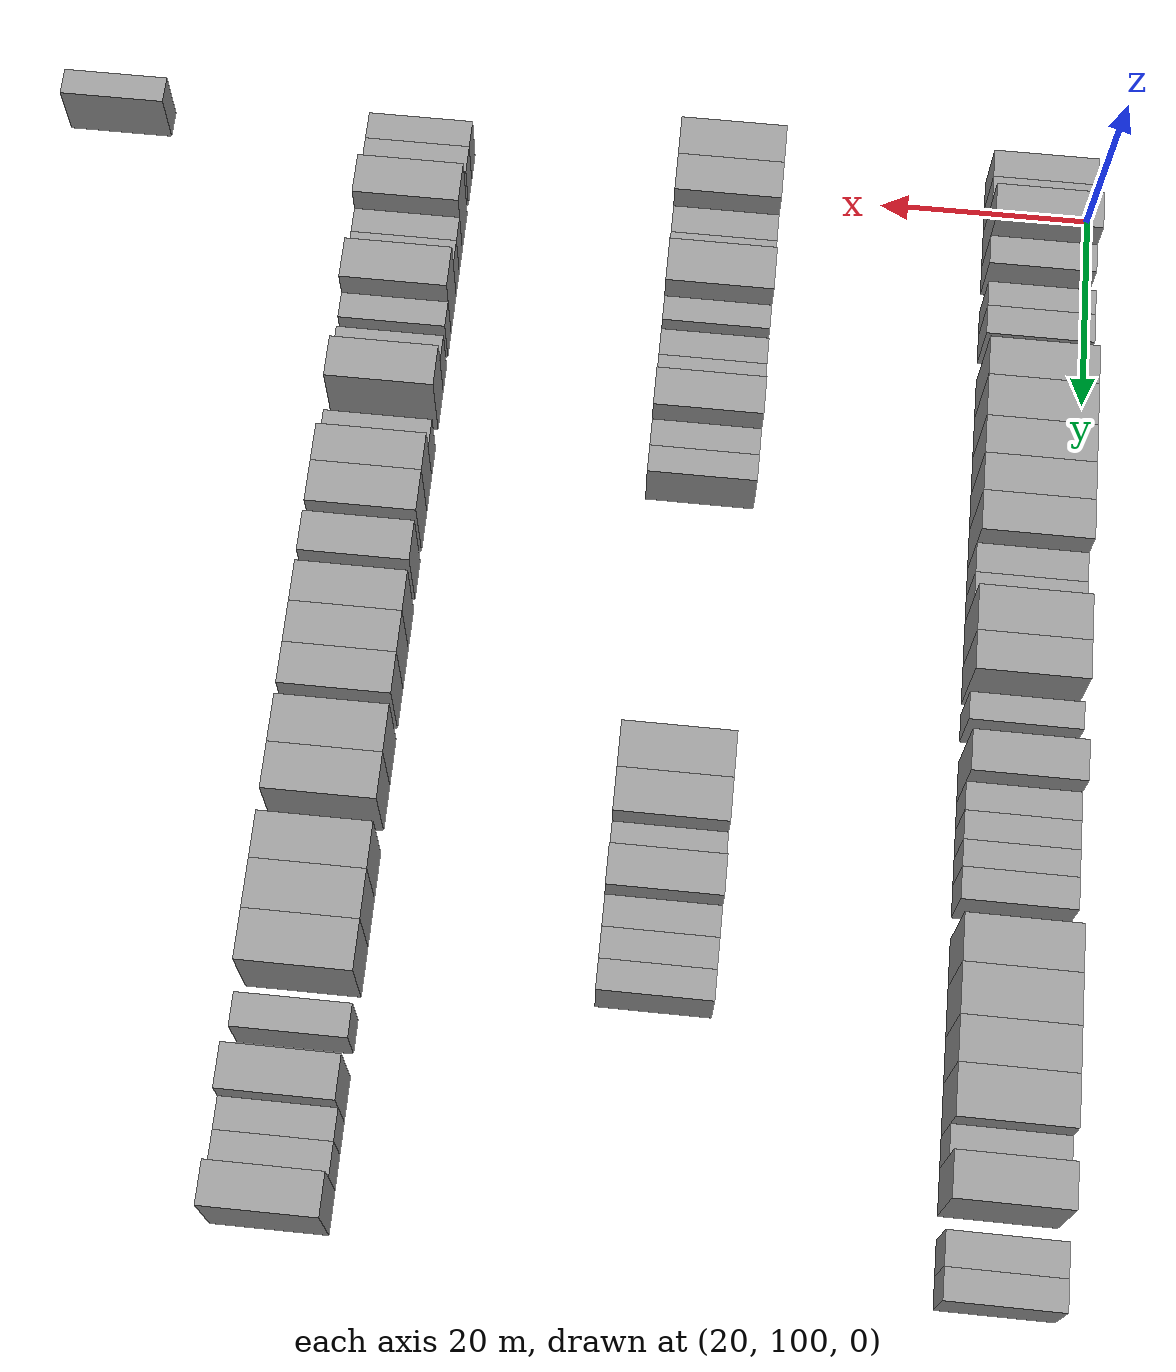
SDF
<sdf version="1.6">
 <world name="default">
  <model name="building_140">
   <static>1</static>
   <pose>25.0000 98.0081 0 0.000000 0.000000 0.000000</pose>
   <link name="link">
    <pose>0 0 3.00 0 0 0</pose>
    <collision name="collision"><geometry><box><size>10.0000 2.9160 6.0000</size></box></geometry></collision>
    <visual name="visual">
     <cast_shadows>0</cast_shadows>
     <geometry><box><size>10.0000 2.9160 6.0000</size></box></geometry>
     <material>
      <script>
       <uri>model://grey_wall/materials/scripts</uri>
       <uri>model://grey_wall/materials/textures</uri>
       <name>vrc/grey_wall</name>
      </script>
     </material>
    </visual>
   </link>
  </model>
  <model name="building_141">
   <static>1</static>
   <pose>25.0000 100.8148 0 0.000000 0.000000 0.000000</pose>
   <link name="link">
    <pose>0 0 3.00 0 0 0</pose>
    <collision name="collision"><geometry><box><size>10.0000 2.6975 6.0000</size></box></geometry></collision>
    <visual name="visual">
     <cast_shadows>0</cast_shadows>
     <geometry><box><size>10.0000 2.6975 6.0000</size></box></geometry>
     <material>
      <script>
       <uri>model://grey_wall/materials/scripts</uri>
       <uri>model://grey_wall/materials/textures</uri>
       <name>vrc/grey_wall</name>
      </script>
     </material>
    </visual>
   </link>
  </model>
  <model name="building_142">
   <static>1</static>
   <pose>25.0000 104.0784 0 0.000000 0.000000 0.000000</pose>
   <link name="link">
    <pose>0 0 4.50 0 0 0</pose>
    <collision name="collision"><geometry><box><size>10.0000 3.8297 9.0000</size></box></geometry></collision>
    <visual name="visual">
     <cast_shadows>0</cast_shadows>
     <geometry><box><size>10.0000 3.8297 9.0000</size></box></geometry>
     <material>
      <script>
       <uri>model://grey_wall/materials/scripts</uri>
       <uri>model://grey_wall/materials/textures</uri>
       <name>vrc/grey_wall</name>
      </script>
     </material>
    </visual>
   </link>
  </model>
  <model name="building_143">
   <static>1</static>
   <pose>25.0000 107.4707 0 0.000000 0.000000 0.000000</pose>
   <link name="link">
    <pose>0 0 3.00 0 0 0</pose>
    <collision name="collision"><geometry><box><size>10.0000 2.9550 6.0000</size></box></geometry></collision>
    <visual name="visual">
     <cast_shadows>0</cast_shadows>
     <geometry><box><size>10.0000 2.9550 6.0000</size></box></geometry>
     <material>
      <script>
       <uri>model://grey_wall/materials/scripts</uri>
       <uri>model://grey_wall/materials/textures</uri>
       <name>vrc/grey_wall</name>
      </script>
     </material>
    </visual>
   </link>
  </model>
  <model name="building_144">
   <static>1</static>
   <pose>25.0000 112.2206 0 0.000000 0.000000 0.000000</pose>
   <link name="link">
    <pose>0 0 3.00 0 0 0</pose>
    <collision name="collision"><geometry><box><size>10.0000 2.5448 6.0000</size></box></geometry></collision>
    <visual name="visual">
     <cast_shadows>0</cast_shadows>
     <geometry><box><size>10.0000 2.5448 6.0000</size></box></geometry>
     <material>
      <script>
       <uri>model://grey_wall/materials/scripts</uri>
       <uri>model://grey_wall/materials/textures</uri>
       <name>vrc/grey_wall</name>
      </script>
     </material>
    </visual>
   </link>
  </model>
  <model name="building_145">
   <static>1</static>
   <pose>25.0000 114.9694 0 0.000000 0.000000 0.000000</pose>
   <link name="link">
    <pose>0 0 3.00 0 0 0</pose>
    <collision name="collision"><geometry><box><size>10.0000 2.9528 6.0000</size></box></geometry></collision>
    <visual name="visual">
     <cast_shadows>0</cast_shadows>
     <geometry><box><size>10.0000 2.9528 6.0000</size></box></geometry>
     <material>
      <script>
       <uri>model://grey_wall/materials/scripts</uri>
       <uri>model://grey_wall/materials/textures</uri>
       <name>vrc/grey_wall</name>
      </script>
     </material>
    </visual>
   </link>
  </model>
  <model name="building_146">
   <static>1</static>
   <pose>25.0000 120.3851 0 0.000000 0.000000 0.000000</pose>
   <link name="link">
    <pose>0 0 4.50 0 0 0</pose>
    <collision name="collision"><geometry><box><size>10.0000 3.8787 9.0000</size></box></geometry></collision>
    <visual name="visual">
     <cast_shadows>0</cast_shadows>
     <geometry><box><size>10.0000 3.8787 9.0000</size></box></geometry>
     <material>
      <script>
       <uri>model://grey_wall/materials/scripts</uri>
       <uri>model://grey_wall/materials/textures</uri>
       <name>vrc/grey_wall</name>
      </script>
     </material>
    </visual>
   </link>
  </model>
  <model name="building_147">
   <static>1</static>
   <pose>25.0000 124.4127 0 0.000000 0.000000 0.000000</pose>
   <link name="link">
    <pose>0 0 4.50 0 0 0</pose>
    <collision name="collision"><geometry><box><size>10.0000 4.1764 9.0000</size></box></geometry></collision>
    <visual name="visual">
     <cast_shadows>0</cast_shadows>
     <geometry><box><size>10.0000 4.1764 9.0000</size></box></geometry>
     <material>
      <script>
       <uri>model://grey_wall/materials/scripts</uri>
       <uri>model://grey_wall/materials/textures</uri>
       <name>vrc/grey_wall</name>
      </script>
     </material>
    </visual>
   </link>
  </model>
  <model name="building_148">
   <static>1</static>
   <pose>25.0000 128.3811 0 0.000000 0.000000 0.000000</pose>
   <link name="link">
    <pose>0 0 4.50 0 0 0</pose>
    <collision name="collision"><geometry><box><size>10.0000 3.7604 9.0000</size></box></geometry></collision>
    <visual name="visual">
     <cast_shadows>0</cast_shadows>
     <geometry><box><size>10.0000 3.7604 9.0000</size></box></geometry>
     <material>
      <script>
       <uri>model://grey_wall/materials/scripts</uri>
       <uri>model://grey_wall/materials/textures</uri>
       <name>vrc/grey_wall</name>
      </script>
     </material>
    </visual>
   </link>
  </model>
  <model name="building_149">
   <static>1</static>
   <pose>25.0000 132.1184 0 0.000000 0.000000 0.000000</pose>
   <link name="link">
    <pose>0 0 4.50 0 0 0</pose>
    <collision name="collision"><geometry><box><size>10.0000 3.7141 9.0000</size></box></geometry></collision>
    <visual name="visual">
     <cast_shadows>0</cast_shadows>
     <geometry><box><size>10.0000 3.7141 9.0000</size></box></geometry>
     <material>
      <script>
       <uri>model://grey_wall/materials/scripts</uri>
       <uri>model://grey_wall/materials/textures</uri>
       <name>vrc/grey_wall</name>
      </script>
     </material>
    </visual>
   </link>
  </model>
  <model name="building_150">
   <static>1</static>
   <pose>25.0000 135.9030 0 0.000000 0.000000 0.000000</pose>
   <link name="link">
    <pose>0 0 4.50 0 0 0</pose>
    <collision name="collision"><geometry><box><size>10.0000 3.8553 9.0000</size></box></geometry></collision>
    <visual name="visual">
     <cast_shadows>0</cast_shadows>
     <geometry><box><size>10.0000 3.8553 9.0000</size></box></geometry>
     <material>
      <script>
       <uri>model://grey_wall/materials/scripts</uri>
       <uri>model://grey_wall/materials/textures</uri>
       <name>vrc/grey_wall</name>
      </script>
     </material>
    </visual>
   </link>
  </model>
  <model name="building_151">
   <static>1</static>
   <pose>25.0000 139.2548 0 0.000000 0.000000 0.000000</pose>
   <link name="link">
    <pose>0 0 3.00 0 0 0</pose>
    <collision name="collision"><geometry><box><size>10.0000 2.8482 6.0000</size></box></geometry></collision>
    <visual name="visual">
     <cast_shadows>0</cast_shadows>
     <geometry><box><size>10.0000 2.8482 6.0000</size></box></geometry>
     <material>
      <script>
       <uri>model://grey_wall/materials/scripts</uri>
       <uri>model://grey_wall/materials/textures</uri>
       <name>vrc/grey_wall</name>
      </script>
     </material>
    </visual>
   </link>
  </model>
  <model name="building_152">
   <static>1</static>
   <pose>25.0000 141.9115 0 0.000000 0.000000 0.000000</pose>
   <link name="link">
    <pose>0 0 3.00 0 0 0</pose>
    <collision name="collision"><geometry><box><size>10.0000 2.4652 6.0000</size></box></geometry></collision>
    <visual name="visual">
     <cast_shadows>0</cast_shadows>
     <geometry><box><size>10.0000 2.4652 6.0000</size></box></geometry>
     <material>
      <script>
       <uri>model://grey_wall/materials/scripts</uri>
       <uri>model://grey_wall/materials/textures</uri>
       <name>vrc/grey_wall</name>
      </script>
     </material>
    </visual>
   </link>
  </model>
  <model name="building_153">
   <static>1</static>
   <pose>25.0000 145.3161 0 0.000000 0.000000 0.000000</pose>
   <link name="link">
    <pose>0 0 4.50 0 0 0</pose>
    <collision name="collision"><geometry><box><size>10.0000 4.3440 9.0000</size></box></geometry></collision>
    <visual name="visual">
     <cast_shadows>0</cast_shadows>
     <geometry><box><size>10.0000 4.3440 9.0000</size></box></geometry>
     <material>
      <script>
       <uri>model://grey_wall/materials/scripts</uri>
       <uri>model://grey_wall/materials/textures</uri>
       <name>vrc/grey_wall</name>
      </script>
     </material>
    </visual>
   </link>
  </model>
  <model name="building_154">
   <static>1</static>
   <pose>25.0000 149.3092 0 0.000000 0.000000 0.000000</pose>
   <link name="link">
    <pose>0 0 4.50 0 0 0</pose>
    <collision name="collision"><geometry><box><size>10.0000 3.6423 9.0000</size></box></geometry></collision>
    <visual name="visual">
     <cast_shadows>0</cast_shadows>
     <geometry><box><size>10.0000 3.6423 9.0000</size></box></geometry>
     <material>
      <script>
       <uri>model://grey_wall/materials/scripts</uri>
       <uri>model://grey_wall/materials/textures</uri>
       <name>vrc/grey_wall</name>
      </script>
     </material>
    </visual>
   </link>
  </model>
  <model name="building_155">
   <static>1</static>
   <pose>25.0000 153.4134 0 0.000000 0.000000 0.000000</pose>
   <link name="link">
    <pose>0 0 3.00 0 0 0</pose>
    <collision name="collision"><geometry><box><size>10.0000 2.5661 6.0000</size></box></geometry></collision>
    <visual name="visual">
     <cast_shadows>0</cast_shadows>
     <geometry><box><size>10.0000 2.5661 6.0000</size></box></geometry>
     <material>
      <script>
       <uri>model://grey_wall/materials/scripts</uri>
       <uri>model://grey_wall/materials/textures</uri>
       <name>vrc/grey_wall</name>
      </script>
     </material>
    </visual>
   </link>
  </model>
  <model name="building_156">
   <static>1</static>
   <pose>25.0000 158.5717 0 0.000000 0.000000 0.000000</pose>
   <link name="link">
    <pose>0 0 4.50 0 0 0</pose>
    <collision name="collision"><geometry><box><size>10.0000 3.7504 9.0000</size></box></geometry></collision>
    <visual name="visual">
     <cast_shadows>0</cast_shadows>
     <geometry><box><size>10.0000 3.7504 9.0000</size></box></geometry>
     <material>
      <script>
       <uri>model://grey_wall/materials/scripts</uri>
       <uri>model://grey_wall/materials/textures</uri>
       <name>vrc/grey_wall</name>
      </script>
     </material>
    </visual>
   </link>
  </model>
  <model name="building_157">
   <static>1</static>
   <pose>25.0000 161.7484 0 0.000000 0.000000 0.000000</pose>
   <link name="link">
    <pose>0 0 3.00 0 0 0</pose>
    <collision name="collision"><geometry><box><size>10.0000 2.6029 6.0000</size></box></geometry></collision>
    <visual name="visual">
     <cast_shadows>0</cast_shadows>
     <geometry><box><size>10.0000 2.6029 6.0000</size></box></geometry>
     <material>
      <script>
       <uri>model://grey_wall/materials/scripts</uri>
       <uri>model://grey_wall/materials/textures</uri>
       <name>vrc/grey_wall</name>
      </script>
     </material>
    </visual>
   </link>
  </model>
  <model name="building_158">
   <static>1</static>
   <pose>25.0000 164.3542 0 0.000000 0.000000 0.000000</pose>
   <link name="link">
    <pose>0 0 3.00 0 0 0</pose>
    <collision name="collision"><geometry><box><size>10.0000 2.6088 6.0000</size></box></geometry></collision>
    <visual name="visual">
     <cast_shadows>0</cast_shadows>
     <geometry><box><size>10.0000 2.6088 6.0000</size></box></geometry>
     <material>
      <script>
       <uri>model://grey_wall/materials/scripts</uri>
       <uri>model://grey_wall/materials/textures</uri>
       <name>vrc/grey_wall</name>
      </script>
     </material>
    </visual>
   </link>
  </model>
  <model name="building_159">
   <static>1</static>
   <pose>25.0000 166.8739 0 0.000000 0.000000 0.000000</pose>
   <link name="link">
    <pose>0 0 3.00 0 0 0</pose>
    <collision name="collision"><geometry><box><size>10.0000 2.4306 6.0000</size></box></geometry></collision>
    <visual name="visual">
     <cast_shadows>0</cast_shadows>
     <geometry><box><size>10.0000 2.4306 6.0000</size></box></geometry>
     <material>
      <script>
       <uri>model://grey_wall/materials/scripts</uri>
       <uri>model://grey_wall/materials/textures</uri>
       <name>vrc/grey_wall</name>
      </script>
     </material>
    </visual>
   </link>
  </model>
  <model name="building_160">
   <static>1</static>
   <pose>25.0000 169.5334 0 0.000000 0.000000 0.000000</pose>
   <link name="link">
    <pose>0 0 3.00 0 0 0</pose>
    <collision name="collision"><geometry><box><size>10.0000 2.8885 6.0000</size></box></geometry></collision>
    <visual name="visual">
     <cast_shadows>0</cast_shadows>
     <geometry><box><size>10.0000 2.8885 6.0000</size></box></geometry>
     <material>
      <script>
       <uri>model://grey_wall/materials/scripts</uri>
       <uri>model://grey_wall/materials/textures</uri>
       <name>vrc/grey_wall</name>
      </script>
     </material>
    </visual>
   </link>
  </model>
  <model name="building_161">
   <static>1</static>
   <pose>25.0000 175.0830 0 0.000000 0.000000 0.000000</pose>
   <link name="link">
    <pose>0 0 4.50 0 0 0</pose>
    <collision name="collision"><geometry><box><size>10.0000 4.2106 9.0000</size></box></geometry></collision>
    <visual name="visual">
     <cast_shadows>0</cast_shadows>
     <geometry><box><size>10.0000 4.2106 9.0000</size></box></geometry>
     <material>
      <script>
       <uri>model://grey_wall/materials/scripts</uri>
       <uri>model://grey_wall/materials/textures</uri>
       <name>vrc/grey_wall</name>
      </script>
     </material>
    </visual>
   </link>
  </model>
  <model name="building_162">
   <static>1</static>
   <pose>25.0000 179.4104 0 0.000000 0.000000 0.000000</pose>
   <link name="link">
    <pose>0 0 4.50 0 0 0</pose>
    <collision name="collision"><geometry><box><size>10.0000 4.4443 9.0000</size></box></geometry></collision>
    <visual name="visual">
     <cast_shadows>0</cast_shadows>
     <geometry><box><size>10.0000 4.4443 9.0000</size></box></geometry>
     <material>
      <script>
       <uri>model://grey_wall/materials/scripts</uri>
       <uri>model://grey_wall/materials/textures</uri>
       <name>vrc/grey_wall</name>
      </script>
     </material>
    </visual>
   </link>
  </model>
  <model name="building_163">
   <static>1</static>
   <pose>25.0000 183.6202 0 0.000000 0.000000 0.000000</pose>
   <link name="link">
    <pose>0 0 4.50 0 0 0</pose>
    <collision name="collision"><geometry><box><size>10.0000 3.9752 9.0000</size></box></geometry></collision>
    <visual name="visual">
     <cast_shadows>0</cast_shadows>
     <geometry><box><size>10.0000 3.9752 9.0000</size></box></geometry>
     <material>
      <script>
       <uri>model://grey_wall/materials/scripts</uri>
       <uri>model://grey_wall/materials/textures</uri>
       <name>vrc/grey_wall</name>
      </script>
     </material>
    </visual>
   </link>
  </model>
  <model name="building_164">
   <static>1</static>
   <pose>25.0000 187.8557 0 0.000000 0.000000 0.000000</pose>
   <link name="link">
    <pose>0 0 4.50 0 0 0</pose>
    <collision name="collision"><geometry><box><size>10.0000 4.4959 9.0000</size></box></geometry></collision>
    <visual name="visual">
     <cast_shadows>0</cast_shadows>
     <geometry><box><size>10.0000 4.4959 9.0000</size></box></geometry>
     <material>
      <script>
       <uri>model://grey_wall/materials/scripts</uri>
       <uri>model://grey_wall/materials/textures</uri>
       <name>vrc/grey_wall</name>
      </script>
     </material>
    </visual>
   </link>
  </model>
  <model name="building_165">
   <static>1</static>
   <pose>25.0000 191.4259 0 0.000000 0.000000 0.000000</pose>
   <link name="link">
    <pose>0 0 3.00 0 0 0</pose>
    <collision name="collision"><geometry><box><size>10.0000 2.6445 6.0000</size></box></geometry></collision>
    <visual name="visual">
     <cast_shadows>0</cast_shadows>
     <geometry><box><size>10.0000 2.6445 6.0000</size></box></geometry>
     <material>
      <script>
       <uri>model://grey_wall/materials/scripts</uri>
       <uri>model://grey_wall/materials/textures</uri>
       <name>vrc/grey_wall</name>
      </script>
     </material>
    </visual>
   </link>
  </model>
  <model name="building_166">
   <static>1</static>
   <pose>25.0000 194.7115 0 0.000000 0.000000 0.000000</pose>
   <link name="link">
    <pose>0 0 4.50 0 0 0</pose>
    <collision name="collision"><geometry><box><size>10.0000 3.9267 9.0000</size></box></geometry></collision>
    <visual name="visual">
     <cast_shadows>0</cast_shadows>
     <geometry><box><size>10.0000 3.9267 9.0000</size></box></geometry>
     <material>
      <script>
       <uri>model://grey_wall/materials/scripts</uri>
       <uri>model://grey_wall/materials/textures</uri>
       <name>vrc/grey_wall</name>
      </script>
     </material>
    </visual>
   </link>
  </model>
  <model name="building_167">
   <static>1</static>
   <pose>25.0000 200.1403 0 0.000000 0.000000 0.000000</pose>
   <link name="link">
    <pose>0 0 3.00 0 0 0</pose>
    <collision name="collision"><geometry><box><size>10.0000 2.9309 6.0000</size></box></geometry></collision>
    <visual name="visual">
     <cast_shadows>0</cast_shadows>
     <geometry><box><size>10.0000 2.9309 6.0000</size></box></geometry>
     <material>
      <script>
       <uri>model://grey_wall/materials/scripts</uri>
       <uri>model://grey_wall/materials/textures</uri>
       <name>vrc/grey_wall</name>
      </script>
     </material>
    </visual>
   </link>
  </model>
  <model name="building_168">
   <static>1</static>
   <pose>25.0000 202.9592 0 0.000000 0.000000 0.000000</pose>
   <link name="link">
    <pose>0 0 3.00 0 0 0</pose>
    <collision name="collision"><geometry><box><size>10.0000 2.7071 6.0000</size></box></geometry></collision>
    <visual name="visual">
     <cast_shadows>0</cast_shadows>
     <geometry><box><size>10.0000 2.7071 6.0000</size></box></geometry>
     <material>
      <script>
       <uri>model://grey_wall/materials/scripts</uri>
       <uri>model://grey_wall/materials/textures</uri>
       <name>vrc/grey_wall</name>
      </script>
     </material>
    </visual>
   </link>
  </model>
  <model name="building_373">
   <static>1</static>
   <pose>55.0000 99.8440 0 0.000000 0.000000 0.000000</pose>
   <link name="link">
    <pose>0 0 4.50 0 0 0</pose>
    <collision name="collision"><geometry><box><size>10.0000 4.0510 9.0000</size></box></geometry></collision>
    <visual name="visual">
     <cast_shadows>0</cast_shadows>
     <geometry><box><size>10.0000 4.0510 9.0000</size></box></geometry>
     <material>
      <script>
       <uri>model://grey_wall/materials/scripts</uri>
       <uri>model://grey_wall/materials/textures</uri>
       <name>vrc/grey_wall</name>
      </script>
     </material>
    </visual>
   </link>
  </model>
  <model name="building_374">
   <static>1</static>
   <pose>55.0000 103.8215 0 0.000000 0.000000 0.000000</pose>
   <link name="link">
    <pose>0 0 4.50 0 0 0</pose>
    <collision name="collision"><geometry><box><size>10.0000 3.9040 9.0000</size></box></geometry></collision>
    <visual name="visual">
     <cast_shadows>0</cast_shadows>
     <geometry><box><size>10.0000 3.9040 9.0000</size></box></geometry>
     <material>
      <script>
       <uri>model://grey_wall/materials/scripts</uri>
       <uri>model://grey_wall/materials/textures</uri>
       <name>vrc/grey_wall</name>
      </script>
     </material>
    </visual>
   </link>
  </model>
  <model name="building_375">
   <static>1</static>
   <pose>55.0000 107.1887 0 0.000000 0.000000 0.000000</pose>
   <link name="link">
    <pose>0 0 3.00 0 0 0</pose>
    <collision name="collision"><geometry><box><size>10.0000 2.8305 6.0000</size></box></geometry></collision>
    <visual name="visual">
     <cast_shadows>0</cast_shadows>
     <geometry><box><size>10.0000 2.8305 6.0000</size></box></geometry>
     <material>
      <script>
       <uri>model://grey_wall/materials/scripts</uri>
       <uri>model://grey_wall/materials/textures</uri>
       <name>vrc/grey_wall</name>
      </script>
     </material>
    </visual>
   </link>
  </model>
  <model name="building_376">
   <static>1</static>
   <pose>55.0000 109.8591 0 0.000000 0.000000 0.000000</pose>
   <link name="link">
    <pose>0 0 3.00 0 0 0</pose>
    <collision name="collision"><geometry><box><size>10.0000 2.5101 6.0000</size></box></geometry></collision>
    <visual name="visual">
     <cast_shadows>0</cast_shadows>
     <geometry><box><size>10.0000 2.5101 6.0000</size></box></geometry>
     <material>
      <script>
       <uri>model://grey_wall/materials/scripts</uri>
       <uri>model://grey_wall/materials/textures</uri>
       <name>vrc/grey_wall</name>
      </script>
     </material>
    </visual>
   </link>
  </model>
  <model name="building_377">
   <static>1</static>
   <pose>55.0000 113.3225 0 0.000000 0.000000 0.000000</pose>
   <link name="link">
    <pose>0 0 4.50 0 0 0</pose>
    <collision name="collision"><geometry><box><size>10.0000 4.4168 9.0000</size></box></geometry></collision>
    <visual name="visual">
     <cast_shadows>0</cast_shadows>
     <geometry><box><size>10.0000 4.4168 9.0000</size></box></geometry>
     <material>
      <script>
       <uri>model://grey_wall/materials/scripts</uri>
       <uri>model://grey_wall/materials/textures</uri>
       <name>vrc/grey_wall</name>
      </script>
     </material>
    </visual>
   </link>
  </model>
  <model name="building_378">
   <static>1</static>
   <pose>55.0000 116.7806 0 0.000000 0.000000 0.000000</pose>
   <link name="link">
    <pose>0 0 3.00 0 0 0</pose>
    <collision name="collision"><geometry><box><size>10.0000 2.4994 6.0000</size></box></geometry></collision>
    <visual name="visual">
     <cast_shadows>0</cast_shadows>
     <geometry><box><size>10.0000 2.4994 6.0000</size></box></geometry>
     <material>
      <script>
       <uri>model://grey_wall/materials/scripts</uri>
       <uri>model://grey_wall/materials/textures</uri>
       <name>vrc/grey_wall</name>
      </script>
     </material>
    </visual>
   </link>
  </model>
  <model name="building_379">
   <static>1</static>
   <pose>55.0000 120.3740 0 0.000000 0.000000 0.000000</pose>
   <link name="link">
    <pose>0 0 3.00 0 0 0</pose>
    <collision name="collision"><geometry><box><size>10.0000 2.6873 6.0000</size></box></geometry></collision>
    <visual name="visual">
     <cast_shadows>0</cast_shadows>
     <geometry><box><size>10.0000 2.6873 6.0000</size></box></geometry>
     <material>
      <script>
       <uri>model://grey_wall/materials/scripts</uri>
       <uri>model://grey_wall/materials/textures</uri>
       <name>vrc/grey_wall</name>
      </script>
     </material>
    </visual>
   </link>
  </model>
  <model name="building_380">
   <static>1</static>
   <pose>55.0000 123.1897 0 0.000000 0.000000 0.000000</pose>
   <link name="link">
    <pose>0 0 3.00 0 0 0</pose>
    <collision name="collision"><geometry><box><size>10.0000 2.9441 6.0000</size></box></geometry></collision>
    <visual name="visual">
     <cast_shadows>0</cast_shadows>
     <geometry><box><size>10.0000 2.9441 6.0000</size></box></geometry>
     <material>
      <script>
       <uri>model://grey_wall/materials/scripts</uri>
       <uri>model://grey_wall/materials/textures</uri>
       <name>vrc/grey_wall</name>
      </script>
     </material>
    </visual>
   </link>
  </model>
  <model name="building_381">
   <static>1</static>
   <pose>55.0000 126.5423 0 0.000000 0.000000 0.000000</pose>
   <link name="link">
    <pose>0 0 4.50 0 0 0</pose>
    <collision name="collision"><geometry><box><size>10.0000 3.7610 9.0000</size></box></geometry></collision>
    <visual name="visual">
     <cast_shadows>0</cast_shadows>
     <geometry><box><size>10.0000 3.7610 9.0000</size></box></geometry>
     <material>
      <script>
       <uri>model://grey_wall/materials/scripts</uri>
       <uri>model://grey_wall/materials/textures</uri>
       <name>vrc/grey_wall</name>
      </script>
     </material>
    </visual>
   </link>
  </model>
  <model name="building_382">
   <static>1</static>
   <pose>55.0000 129.7508 0 0.000000 0.000000 0.000000</pose>
   <link name="link">
    <pose>0 0 3.00 0 0 0</pose>
    <collision name="collision"><geometry><box><size>10.0000 2.6559 6.0000</size></box></geometry></collision>
    <visual name="visual">
     <cast_shadows>0</cast_shadows>
     <geometry><box><size>10.0000 2.6559 6.0000</size></box></geometry>
     <material>
      <script>
       <uri>model://grey_wall/materials/scripts</uri>
       <uri>model://grey_wall/materials/textures</uri>
       <name>vrc/grey_wall</name>
      </script>
     </material>
    </visual>
   </link>
  </model>
  <model name="building_383">
   <static>1</static>
   <pose>55.0000 132.3890 0 0.000000 0.000000 0.000000</pose>
   <link name="link">
    <pose>0 0 3.00 0 0 0</pose>
    <collision name="collision"><geometry><box><size>10.0000 2.6204 6.0000</size></box></geometry></collision>
    <visual name="visual">
     <cast_shadows>0</cast_shadows>
     <geometry><box><size>10.0000 2.6204 6.0000</size></box></geometry>
     <material>
      <script>
       <uri>model://grey_wall/materials/scripts</uri>
       <uri>model://grey_wall/materials/textures</uri>
       <name>vrc/grey_wall</name>
      </script>
     </material>
    </visual>
   </link>
  </model>
  <model name="building_384">
   <static>1</static>
   <pose>55.0000 161.0288 0 0.000000 0.000000 0.000000</pose>
   <link name="link">
    <pose>0 0 4.50 0 0 0</pose>
    <collision name="collision"><geometry><box><size>10.0000 4.2197 9.0000</size></box></geometry></collision>
    <visual name="visual">
     <cast_shadows>0</cast_shadows>
     <geometry><box><size>10.0000 4.2197 9.0000</size></box></geometry>
     <material>
      <script>
       <uri>model://grey_wall/materials/scripts</uri>
       <uri>model://grey_wall/materials/textures</uri>
       <name>vrc/grey_wall</name>
      </script>
     </material>
    </visual>
   </link>
  </model>
  <model name="building_385">
   <static>1</static>
   <pose>55.0000 165.1083 0 0.000000 0.000000 0.000000</pose>
   <link name="link">
    <pose>0 0 4.50 0 0 0</pose>
    <collision name="collision"><geometry><box><size>10.0000 3.9393 9.0000</size></box></geometry></collision>
    <visual name="visual">
     <cast_shadows>0</cast_shadows>
     <geometry><box><size>10.0000 3.9393 9.0000</size></box></geometry>
     <material>
      <script>
       <uri>model://grey_wall/materials/scripts</uri>
       <uri>model://grey_wall/materials/textures</uri>
       <name>vrc/grey_wall</name>
      </script>
     </material>
    </visual>
   </link>
  </model>
  <model name="building_386">
   <static>1</static>
   <pose>55.0000 168.5179 0 0.000000 0.000000 0.000000</pose>
   <link name="link">
    <pose>0 0 3.00 0 0 0</pose>
    <collision name="collision"><geometry><box><size>10.0000 2.8799 6.0000</size></box></geometry></collision>
    <visual name="visual">
     <cast_shadows>0</cast_shadows>
     <geometry><box><size>10.0000 2.8799 6.0000</size></box></geometry>
     <material>
      <script>
       <uri>model://grey_wall/materials/scripts</uri>
       <uri>model://grey_wall/materials/textures</uri>
       <name>vrc/grey_wall</name>
      </script>
     </material>
    </visual>
   </link>
  </model>
  <model name="building_387">
   <static>1</static>
   <pose>55.0000 171.7753 0 0.000000 0.000000 0.000000</pose>
   <link name="link">
    <pose>0 0 4.50 0 0 0</pose>
    <collision name="collision"><geometry><box><size>10.0000 3.6349 9.0000</size></box></geometry></collision>
    <visual name="visual">
     <cast_shadows>0</cast_shadows>
     <geometry><box><size>10.0000 3.6349 9.0000</size></box></geometry>
     <material>
      <script>
       <uri>model://grey_wall/materials/scripts</uri>
       <uri>model://grey_wall/materials/textures</uri>
       <name>vrc/grey_wall</name>
      </script>
     </material>
    </visual>
   </link>
  </model>
  <model name="building_388">
   <static>1</static>
   <pose>55.0000 174.9915 0 0.000000 0.000000 0.000000</pose>
   <link name="link">
    <pose>0 0 3.00 0 0 0</pose>
    <collision name="collision"><geometry><box><size>10.0000 2.7974 6.0000</size></box></geometry></collision>
    <visual name="visual">
     <cast_shadows>0</cast_shadows>
     <geometry><box><size>10.0000 2.7974 6.0000</size></box></geometry>
     <material>
      <script>
       <uri>model://grey_wall/materials/scripts</uri>
       <uri>model://grey_wall/materials/textures</uri>
       <name>vrc/grey_wall</name>
      </script>
     </material>
    </visual>
   </link>
  </model>
  <model name="building_389">
   <static>1</static>
   <pose>55.0000 177.7781 0 0.000000 0.000000 0.000000</pose>
   <link name="link">
    <pose>0 0 3.00 0 0 0</pose>
    <collision name="collision"><geometry><box><size>10.0000 2.7758 6.0000</size></box></geometry></collision>
    <visual name="visual">
     <cast_shadows>0</cast_shadows>
     <geometry><box><size>10.0000 2.7758 6.0000</size></box></geometry>
     <material>
      <script>
       <uri>model://grey_wall/materials/scripts</uri>
       <uri>model://grey_wall/materials/textures</uri>
       <name>vrc/grey_wall</name>
      </script>
     </material>
    </visual>
   </link>
  </model>
  <model name="building_390">
   <static>1</static>
   <pose>55.0000 180.5239 0 0.000000 0.000000 0.000000</pose>
   <link name="link">
    <pose>0 0 3.00 0 0 0</pose>
    <collision name="collision"><geometry><box><size>10.0000 2.7158 6.0000</size></box></geometry></collision>
    <visual name="visual">
     <cast_shadows>0</cast_shadows>
     <geometry><box><size>10.0000 2.7158 6.0000</size></box></geometry>
     <material>
      <script>
       <uri>model://grey_wall/materials/scripts</uri>
       <uri>model://grey_wall/materials/textures</uri>
       <name>vrc/grey_wall</name>
      </script>
     </material>
    </visual>
   </link>
  </model>
  <model name="building_584">
   <static>1</static>
   <pose>85.0000 99.7848 0 0.000000 0.000000 0.000000</pose>
   <link name="link">
    <pose>0 0 3.00 0 0 0</pose>
    <collision name="collision"><geometry><box><size>10.0000 2.8363 6.0000</size></box></geometry></collision>
    <visual name="visual">
     <cast_shadows>0</cast_shadows>
     <geometry><box><size>10.0000 2.8363 6.0000</size></box></geometry>
     <material>
      <script>
       <uri>model://grey_wall/materials/scripts</uri>
       <uri>model://grey_wall/materials/textures</uri>
       <name>vrc/grey_wall</name>
      </script>
     </material>
    </visual>
   </link>
  </model>
  <model name="building_585">
   <static>1</static>
   <pose>85.0000 102.6178 0 0.000000 0.000000 0.000000</pose>
   <link name="link">
    <pose>0 0 3.00 0 0 0</pose>
    <collision name="collision"><geometry><box><size>10.0000 2.8299 6.0000</size></box></geometry></collision>
    <visual name="visual">
     <cast_shadows>0</cast_shadows>
     <geometry><box><size>10.0000 2.8299 6.0000</size></box></geometry>
     <material>
      <script>
       <uri>model://grey_wall/materials/scripts</uri>
       <uri>model://grey_wall/materials/textures</uri>
       <name>vrc/grey_wall</name>
      </script>
     </material>
    </visual>
   </link>
  </model>
  <model name="building_586">
   <static>1</static>
   <pose>85.0000 107.0486 0 0.000000 0.000000 0.000000</pose>
   <link name="link">
    <pose>0 0 4.50 0 0 0</pose>
    <collision name="collision"><geometry><box><size>10.0000 4.0317 9.0000</size></box></geometry></collision>
    <visual name="visual">
     <cast_shadows>0</cast_shadows>
     <geometry><box><size>10.0000 4.0317 9.0000</size></box></geometry>
     <material>
      <script>
       <uri>model://grey_wall/materials/scripts</uri>
       <uri>model://grey_wall/materials/textures</uri>
       <name>vrc/grey_wall</name>
      </script>
     </material>
    </visual>
   </link>
  </model>
  <model name="building_587">
   <static>1</static>
   <pose>85.0000 110.3262 0 0.000000 0.000000 0.000000</pose>
   <link name="link">
    <pose>0 0 3.00 0 0 0</pose>
    <collision name="collision"><geometry><box><size>10.0000 2.5233 6.0000</size></box></geometry></collision>
    <visual name="visual">
     <cast_shadows>0</cast_shadows>
     <geometry><box><size>10.0000 2.5233 6.0000</size></box></geometry>
     <material>
      <script>
       <uri>model://grey_wall/materials/scripts</uri>
       <uri>model://grey_wall/materials/textures</uri>
       <name>vrc/grey_wall</name>
      </script>
     </material>
    </visual>
   </link>
  </model>
  <model name="building_588">
   <static>1</static>
   <pose>85.0000 112.8504 0 0.000000 0.000000 0.000000</pose>
   <link name="link">
    <pose>0 0 3.00 0 0 0</pose>
    <collision name="collision"><geometry><box><size>10.0000 2.5251 6.0000</size></box></geometry></collision>
    <visual name="visual">
     <cast_shadows>0</cast_shadows>
     <geometry><box><size>10.0000 2.5251 6.0000</size></box></geometry>
     <material>
      <script>
       <uri>model://grey_wall/materials/scripts</uri>
       <uri>model://grey_wall/materials/textures</uri>
       <name>vrc/grey_wall</name>
      </script>
     </material>
    </visual>
   </link>
  </model>
  <model name="building_589">
   <static>1</static>
   <pose>85.0000 116.1559 0 0.000000 0.000000 0.000000</pose>
   <link name="link">
    <pose>0 0 4.50 0 0 0</pose>
    <collision name="collision"><geometry><box><size>10.0000 4.0858 9.0000</size></box></geometry></collision>
    <visual name="visual">
     <cast_shadows>0</cast_shadows>
     <geometry><box><size>10.0000 4.0858 9.0000</size></box></geometry>
     <material>
      <script>
       <uri>model://grey_wall/materials/scripts</uri>
       <uri>model://grey_wall/materials/textures</uri>
       <name>vrc/grey_wall</name>
      </script>
     </material>
    </visual>
   </link>
  </model>
  <model name="building_590">
   <static>1</static>
   <pose>85.0000 119.4943 0 0.000000 0.000000 0.000000</pose>
   <link name="link">
    <pose>0 0 3.00 0 0 0</pose>
    <collision name="collision"><geometry><box><size>10.0000 2.5911 6.0000</size></box></geometry></collision>
    <visual name="visual">
     <cast_shadows>0</cast_shadows>
     <geometry><box><size>10.0000 2.5911 6.0000</size></box></geometry>
     <material>
      <script>
       <uri>model://grey_wall/materials/scripts</uri>
       <uri>model://grey_wall/materials/textures</uri>
       <name>vrc/grey_wall</name>
      </script>
     </material>
    </visual>
   </link>
  </model>
  <model name="building_591">
   <static>1</static>
   <pose>85.0000 123.1284 0 0.000000 0.000000 0.000000</pose>
   <link name="link">
    <pose>0 0 3.00 0 0 0</pose>
    <collision name="collision"><geometry><box><size>10.0000 2.6769 6.0000</size></box></geometry></collision>
    <visual name="visual">
     <cast_shadows>0</cast_shadows>
     <geometry><box><size>10.0000 2.6769 6.0000</size></box></geometry>
     <material>
      <script>
       <uri>model://grey_wall/materials/scripts</uri>
       <uri>model://grey_wall/materials/textures</uri>
       <name>vrc/grey_wall</name>
      </script>
     </material>
    </visual>
   </link>
  </model>
  <model name="building_592">
   <static>1</static>
   <pose>85.0000 126.4808 0 0.000000 0.000000 0.000000</pose>
   <link name="link">
    <pose>0 0 4.50 0 0 0</pose>
    <collision name="collision"><geometry><box><size>10.0000 4.0280 9.0000</size></box></geometry></collision>
    <visual name="visual">
     <cast_shadows>0</cast_shadows>
     <geometry><box><size>10.0000 4.0280 9.0000</size></box></geometry>
     <material>
      <script>
       <uri>model://grey_wall/materials/scripts</uri>
       <uri>model://grey_wall/materials/textures</uri>
       <name>vrc/grey_wall</name>
      </script>
     </material>
    </visual>
   </link>
  </model>
  <model name="building_593">
   <static>1</static>
   <pose>85.0000 131.9452 0 0.000000 0.000000 0.000000</pose>
   <link name="link">
    <pose>0 0 3.00 0 0 0</pose>
    <collision name="collision"><geometry><box><size>10.0000 2.9008 6.0000</size></box></geometry></collision>
    <visual name="visual">
     <cast_shadows>0</cast_shadows>
     <geometry><box><size>10.0000 2.9008 6.0000</size></box></geometry>
     <material>
      <script>
       <uri>model://grey_wall/materials/scripts</uri>
       <uri>model://grey_wall/materials/textures</uri>
       <name>vrc/grey_wall</name>
      </script>
     </material>
    </visual>
   </link>
  </model>
  <model name="building_594">
   <static>1</static>
   <pose>85.0000 135.2289 0 0.000000 0.000000 0.000000</pose>
   <link name="link">
    <pose>0 0 4.50 0 0 0</pose>
    <collision name="collision"><geometry><box><size>10.0000 3.6666 9.0000</size></box></geometry></collision>
    <visual name="visual">
     <cast_shadows>0</cast_shadows>
     <geometry><box><size>10.0000 3.6666 9.0000</size></box></geometry>
     <material>
      <script>
       <uri>model://grey_wall/materials/scripts</uri>
       <uri>model://grey_wall/materials/textures</uri>
       <name>vrc/grey_wall</name>
      </script>
     </material>
    </visual>
   </link>
  </model>
  <model name="building_595">
   <static>1</static>
   <pose>85.0000 139.0614 0 0.000000 0.000000 0.000000</pose>
   <link name="link">
    <pose>0 0 4.50 0 0 0</pose>
    <collision name="collision"><geometry><box><size>10.0000 3.9982 9.0000</size></box></geometry></collision>
    <visual name="visual">
     <cast_shadows>0</cast_shadows>
     <geometry><box><size>10.0000 3.9982 9.0000</size></box></geometry>
     <material>
      <script>
       <uri>model://grey_wall/materials/scripts</uri>
       <uri>model://grey_wall/materials/textures</uri>
       <name>vrc/grey_wall</name>
      </script>
     </material>
    </visual>
   </link>
  </model>
  <model name="building_596">
   <static>1</static>
   <pose>85.0000 143.9742 0 0.000000 0.000000 0.000000</pose>
   <link name="link">
    <pose>0 0 4.50 0 0 0</pose>
    <collision name="collision"><geometry><box><size>10.0000 3.8274 9.0000</size></box></geometry></collision>
    <visual name="visual">
     <cast_shadows>0</cast_shadows>
     <geometry><box><size>10.0000 3.8274 9.0000</size></box></geometry>
     <material>
      <script>
       <uri>model://grey_wall/materials/scripts</uri>
       <uri>model://grey_wall/materials/textures</uri>
       <name>vrc/grey_wall</name>
      </script>
     </material>
    </visual>
   </link>
  </model>
  <model name="building_597">
   <static>1</static>
   <pose>85.0000 148.8152 0 0.000000 0.000000 0.000000</pose>
   <link name="link">
    <pose>0 0 4.50 0 0 0</pose>
    <collision name="collision"><geometry><box><size>10.0000 3.8546 9.0000</size></box></geometry></collision>
    <visual name="visual">
     <cast_shadows>0</cast_shadows>
     <geometry><box><size>10.0000 3.8546 9.0000</size></box></geometry>
     <material>
      <script>
       <uri>model://grey_wall/materials/scripts</uri>
       <uri>model://grey_wall/materials/textures</uri>
       <name>vrc/grey_wall</name>
      </script>
     </material>
    </visual>
   </link>
  </model>
  <model name="building_598">
   <static>1</static>
   <pose>85.0000 152.6903 0 0.000000 0.000000 0.000000</pose>
   <link name="link">
    <pose>0 0 4.50 0 0 0</pose>
    <collision name="collision"><geometry><box><size>10.0000 3.8955 9.0000</size></box></geometry></collision>
    <visual name="visual">
     <cast_shadows>0</cast_shadows>
     <geometry><box><size>10.0000 3.8955 9.0000</size></box></geometry>
     <material>
      <script>
       <uri>model://grey_wall/materials/scripts</uri>
       <uri>model://grey_wall/materials/textures</uri>
       <name>vrc/grey_wall</name>
      </script>
     </material>
    </visual>
   </link>
  </model>
  <model name="building_599">
   <static>1</static>
   <pose>85.0000 156.5601 0 0.000000 0.000000 0.000000</pose>
   <link name="link">
    <pose>0 0 4.50 0 0 0</pose>
    <collision name="collision"><geometry><box><size>10.0000 3.8442 9.0000</size></box></geometry></collision>
    <visual name="visual">
     <cast_shadows>0</cast_shadows>
     <geometry><box><size>10.0000 3.8442 9.0000</size></box></geometry>
     <material>
      <script>
       <uri>model://grey_wall/materials/scripts</uri>
       <uri>model://grey_wall/materials/textures</uri>
       <name>vrc/grey_wall</name>
      </script>
     </material>
    </visual>
   </link>
  </model>
  <model name="building_600">
   <static>1</static>
   <pose>85.0000 161.6756 0 0.000000 0.000000 0.000000</pose>
   <link name="link">
    <pose>0 0 4.50 0 0 0</pose>
    <collision name="collision"><geometry><box><size>10.0000 4.3868 9.0000</size></box></geometry></collision>
    <visual name="visual">
     <cast_shadows>0</cast_shadows>
     <geometry><box><size>10.0000 4.3868 9.0000</size></box></geometry>
     <material>
      <script>
       <uri>model://grey_wall/materials/scripts</uri>
       <uri>model://grey_wall/materials/textures</uri>
       <name>vrc/grey_wall</name>
      </script>
     </material>
    </visual>
   </link>
  </model>
  <model name="building_601">
   <static>1</static>
   <pose>85.0000 165.9763 0 0.000000 0.000000 0.000000</pose>
   <link name="link">
    <pose>0 0 4.50 0 0 0</pose>
    <collision name="collision"><geometry><box><size>10.0000 4.2147 9.0000</size></box></geometry></collision>
    <visual name="visual">
     <cast_shadows>0</cast_shadows>
     <geometry><box><size>10.0000 4.2147 9.0000</size></box></geometry>
     <material>
      <script>
       <uri>model://grey_wall/materials/scripts</uri>
       <uri>model://grey_wall/materials/textures</uri>
       <name>vrc/grey_wall</name>
      </script>
     </material>
    </visual>
   </link>
  </model>
  <model name="building_602">
   <static>1</static>
   <pose>85.0000 172.1731 0 0.000000 0.000000 0.000000</pose>
   <link name="link">
    <pose>0 0 4.50 0 0 0</pose>
    <collision name="collision"><geometry><box><size>10.0000 4.1788 9.0000</size></box></geometry></collision>
    <visual name="visual">
     <cast_shadows>0</cast_shadows>
     <geometry><box><size>10.0000 4.1788 9.0000</size></box></geometry>
     <material>
      <script>
       <uri>model://grey_wall/materials/scripts</uri>
       <uri>model://grey_wall/materials/textures</uri>
       <name>vrc/grey_wall</name>
      </script>
     </material>
    </visual>
   </link>
  </model>
  <model name="building_603">
   <static>1</static>
   <pose>85.0000 176.4473 0 0.000000 0.000000 0.000000</pose>
   <link name="link">
    <pose>0 0 4.50 0 0 0</pose>
    <collision name="collision"><geometry><box><size>10.0000 4.3696 9.0000</size></box></geometry></collision>
    <visual name="visual">
     <cast_shadows>0</cast_shadows>
     <geometry><box><size>10.0000 4.3696 9.0000</size></box></geometry>
     <material>
      <script>
       <uri>model://grey_wall/materials/scripts</uri>
       <uri>model://grey_wall/materials/textures</uri>
       <name>vrc/grey_wall</name>
      </script>
     </material>
    </visual>
   </link>
  </model>
  <model name="building_604">
   <static>1</static>
   <pose>85.0000 180.8530 0 0.000000 0.000000 0.000000</pose>
   <link name="link">
    <pose>0 0 4.50 0 0 0</pose>
    <collision name="collision"><geometry><box><size>10.0000 4.4419 9.0000</size></box></geometry></collision>
    <visual name="visual">
     <cast_shadows>0</cast_shadows>
     <geometry><box><size>10.0000 4.4419 9.0000</size></box></geometry>
     <material>
      <script>
       <uri>model://grey_wall/materials/scripts</uri>
       <uri>model://grey_wall/materials/textures</uri>
       <name>vrc/grey_wall</name>
      </script>
     </material>
    </visual>
   </link>
  </model>
  <model name="building_605">
   <static>1</static>
   <pose>85.0000 186.5425 0 0.000000 0.000000 0.000000</pose>
   <link name="link">
    <pose>0 0 3.00 0 0 0</pose>
    <collision name="collision"><geometry><box><size>10.0000 2.9371 6.0000</size></box></geometry></collision>
    <visual name="visual">
     <cast_shadows>0</cast_shadows>
     <geometry><box><size>10.0000 2.9371 6.0000</size></box></geometry>
     <material>
      <script>
       <uri>model://grey_wall/materials/scripts</uri>
       <uri>model://grey_wall/materials/textures</uri>
       <name>vrc/grey_wall</name>
      </script>
     </material>
    </visual>
   </link>
  </model>
  <model name="building_606">
   <static>1</static>
   <pose>85.0000 191.9275 0 0.000000 0.000000 0.000000</pose>
   <link name="link">
    <pose>0 0 4.50 0 0 0</pose>
    <collision name="collision"><geometry><box><size>10.0000 3.8329 9.0000</size></box></geometry></collision>
    <visual name="visual">
     <cast_shadows>0</cast_shadows>
     <geometry><box><size>10.0000 3.8329 9.0000</size></box></geometry>
     <material>
      <script>
       <uri>model://grey_wall/materials/scripts</uri>
       <uri>model://grey_wall/materials/textures</uri>
       <name>vrc/grey_wall</name>
      </script>
     </material>
    </visual>
   </link>
  </model>
  <model name="building_607">
   <static>1</static>
   <pose>85.0000 195.2311 0 0.000000 0.000000 0.000000</pose>
   <link name="link">
    <pose>0 0 3.00 0 0 0</pose>
    <collision name="collision"><geometry><box><size>10.0000 2.7745 6.0000</size></box></geometry></collision>
    <visual name="visual">
     <cast_shadows>0</cast_shadows>
     <geometry><box><size>10.0000 2.7745 6.0000</size></box></geometry>
     <material>
      <script>
       <uri>model://grey_wall/materials/scripts</uri>
       <uri>model://grey_wall/materials/textures</uri>
       <name>vrc/grey_wall</name>
      </script>
     </material>
    </visual>
   </link>
  </model>
  <model name="building_608">
   <static>1</static>
   <pose>85.0000 198.1037 0 0.000000 0.000000 0.000000</pose>
   <link name="link">
    <pose>0 0 3.00 0 0 0</pose>
    <collision name="collision"><geometry><box><size>10.0000 2.9706 6.0000</size></box></geometry></collision>
    <visual name="visual">
     <cast_shadows>0</cast_shadows>
     <geometry><box><size>10.0000 2.9706 6.0000</size></box></geometry>
     <material>
      <script>
       <uri>model://grey_wall/materials/scripts</uri>
       <uri>model://grey_wall/materials/textures</uri>
       <name>vrc/grey_wall</name>
      </script>
     </material>
    </visual>
   </link>
  </model>
  <model name="building_609">
   <static>1</static>
   <pose>85.0000 201.4388 0 0.000000 0.000000 0.000000</pose>
   <link name="link">
    <pose>0 0 4.50 0 0 0</pose>
    <collision name="collision"><geometry><box><size>10.0000 3.6997 9.0000</size></box></geometry></collision>
    <visual name="visual">
     <cast_shadows>0</cast_shadows>
     <geometry><box><size>10.0000 3.6997 9.0000</size></box></geometry>
     <material>
      <script>
       <uri>model://grey_wall/materials/scripts</uri>
       <uri>model://grey_wall/materials/textures</uri>
       <name>vrc/grey_wall</name>
      </script>
     </material>
    </visual>
   </link>
  </model>
  <model name="building_809">
   <static>1</static>
   <pose>115.0000 97.7478 0 0.000000 0.000000 0.000000</pose>
   <link name="link">
    <pose>0 0 3.00 0 0 0</pose>
    <collision name="collision"><geometry><box><size>10.0000 2.6942 6.0000</size></box></geometry></collision>
    <visual name="visual">
     <cast_shadows>0</cast_shadows>
     <geometry><box><size>10.0000 2.6942 6.0000</size></box></geometry>
     <material>
      <script>
       <uri>model://grey_wall/materials/scripts</uri>
       <uri>model://grey_wall/materials/textures</uri>
       <name>vrc/grey_wall</name>
      </script>
     </material>
    </visual>
   </link>
  </model>
 </world>
</sdf>
